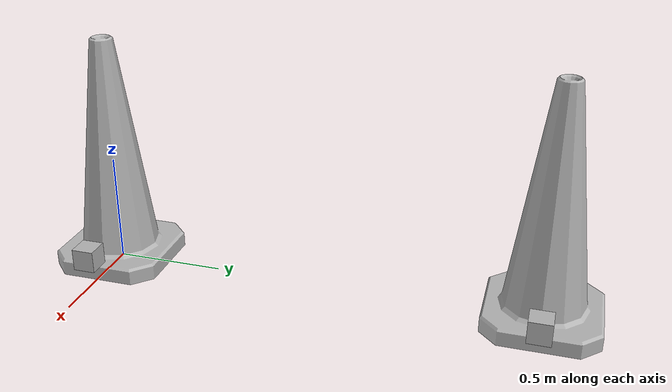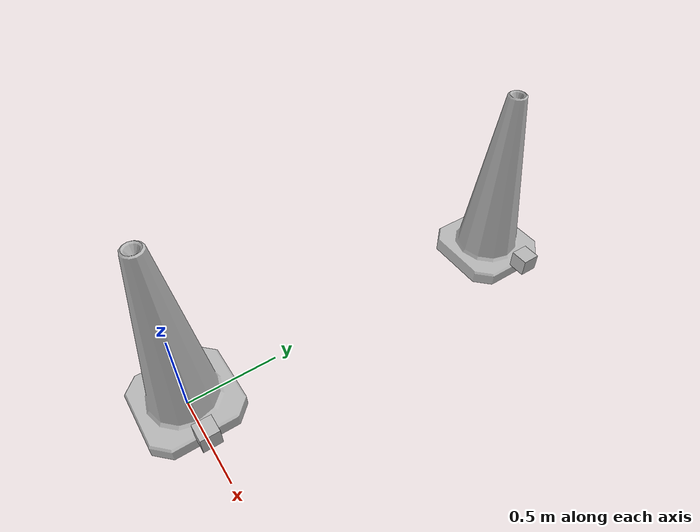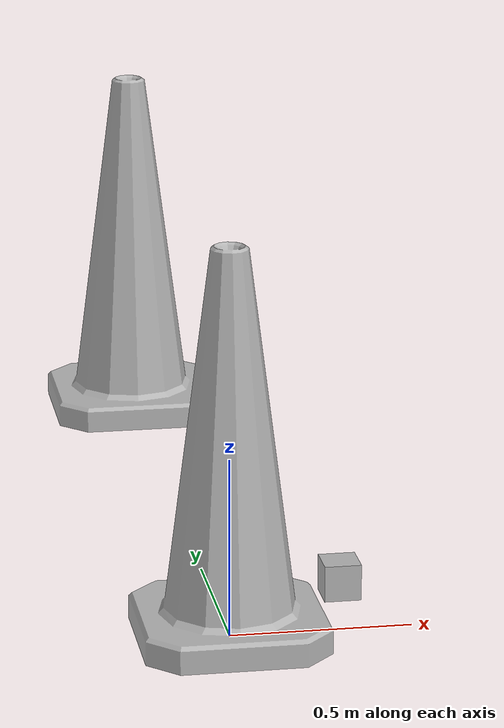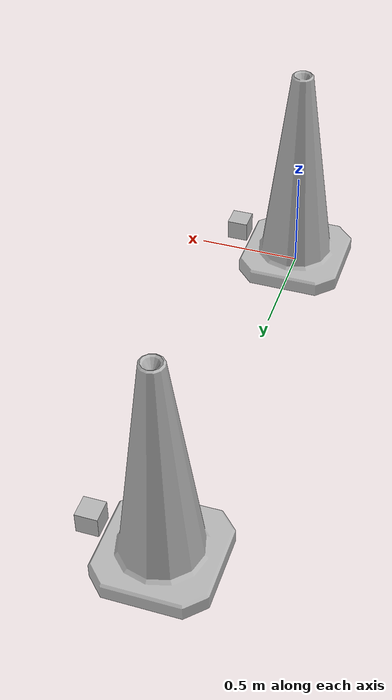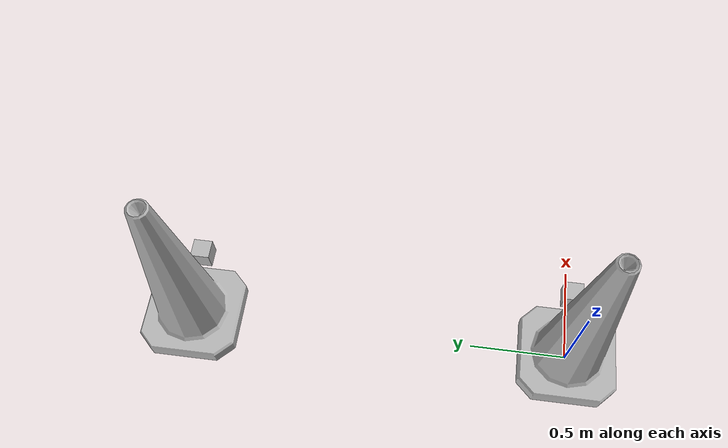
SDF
<?xml version="1.0" ?>
<sdf version='1.7'>
  <world name='default' xmlns:ignition="http://ignitionrobotics.org/schema">
    <light name='sun' type='directional'>
      <cast_shadows>1</cast_shadows>
      <pose>0 0 0 0 -0 0</pose>
      <diffuse>1 1 1 1</diffuse>
      <specular>0.2 0.2 0.2 1</specular>
      <direction>-1 0 -0.2</direction>
      <attenuation>
        <range>10</range>
      </attenuation>
      <spot>
        <inner_angle>0</inner_angle>
        <outer_angle>0</outer_angle>
        <falloff>0</falloff>
      </spot>
    </light>
    <scene>
      <shadows>0</shadows>
    </scene>
    <model name='wide_angle_camera_with_default_texture'>
      <static>1</static>
      <pose>0.3 0 0.15 0 0 3.14159265</pose>
      <link name='link'>
        <visual name='visual'>
          <geometry>
            <box>
              <size>0.1 0.1 0.1</size>
            </box>
          </geometry>
        </visual>
        <sensor name='wide_angle_camera_sensor_with_default_texture' type='wideanglecamera'>
          <camera>
            <horizontal_fov>1.047</horizontal_fov>
            <image>
              <width>12</width>
              <height>12</height>
            </image>
            <clip>
              <near>0.1</near>
              <far>100</far>
            </clip>
            <lens>
              <type>gnomonical</type>
              <scale_to_hfov>1</scale_to_hfov>
              <cutoff_angle>1.5707</cutoff_angle>
              <env_texture_size>512</env_texture_size>
            </lens>
          </camera>
          <always_on>1</always_on>
          <update_rate>10</update_rate>
          <visualize>1</visualize>
        </sensor>
      </link>
    </model>
    <model name='wide_angle_camera_with_grayscale_texture'>
      <static>1</static>
      <pose>0.3 2 0.15 0 0 3.14159265</pose>
      <link name='link'>
        <visual name='visual'>
          <geometry>
            <box>
              <size>0.1 0.1 0.1</size>
            </box>
          </geometry>
        </visual>
        <sensor name='wide_angle_camera_sensor_with_grayscale_texture' type='wideanglecamera'>
          <camera>
            <horizontal_fov>1.047</horizontal_fov>
            <image>
              <width>12</width>
              <height>12</height>
            </image>
            <clip>
              <near>0.1</near>
              <far>100</far>
            </clip>
            <lens>
              <type>gnomonical</type>
              <scale_to_hfov>1</scale_to_hfov>
              <cutoff_angle>1.5707</cutoff_angle>
              <env_texture_size>512</env_texture_size>
              <ignition:env_texture_format>R_FLOAT16</ignition:env_texture_format>
            </lens>
          </camera>
          <always_on>1</always_on>
          <update_rate>10</update_rate>
          <visualize>1</visualize>
        </sensor>
      </link>
    </model>
    <model name='Construction Cone 1'>
      <static>1</static>
      <link name='link'>
        <collision name='collision'>
          <geometry>
            <mesh>
              <scale>10 10 10</scale>
              <uri>model://construction_cone/meshes/construction_cone.dae</uri>
            </mesh>
          </geometry>
          <max_contacts>10</max_contacts>
        </collision>
        <visual name='visual'>
          <geometry>
            <mesh>
              <scale>10 10 10</scale>
              <uri>model://construction_cone/meshes/construction_cone.dae</uri>
            </mesh>
          </geometry>
        </visual>
      </link>
      <pose>0 0 0 0 0 0</pose>
    </model>
    <model name='Construction Cone 2'>
      <static>1</static>
      <link name='link'>
        <collision name='collision'>
          <geometry>
            <mesh>
              <scale>10 10 10</scale>
              <uri>model://construction_cone/meshes/construction_cone.dae</uri>
            </mesh>
          </geometry>
          <max_contacts>10</max_contacts>
        </collision>
        <visual name='visual'>
          <geometry>
            <mesh>
              <scale>10 10 10</scale>
              <uri>model://construction_cone/meshes/construction_cone.dae</uri>
            </mesh>
          </geometry>
        </visual>
      </link>
      <pose>0 2 0 0 0 0</pose>
    </model>
  </world>
</sdf>
